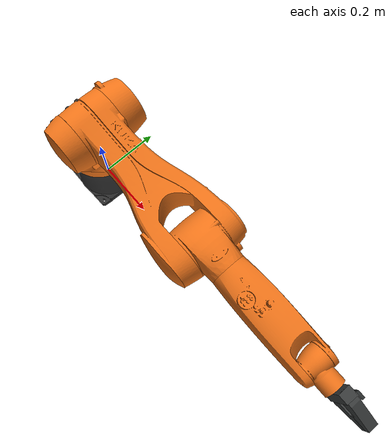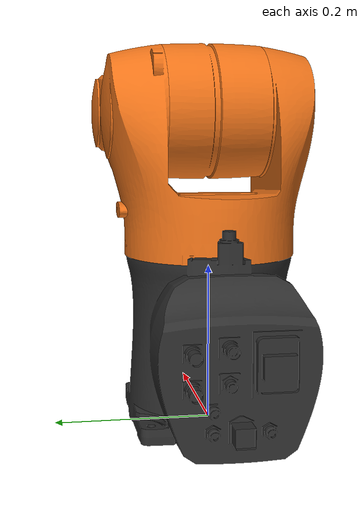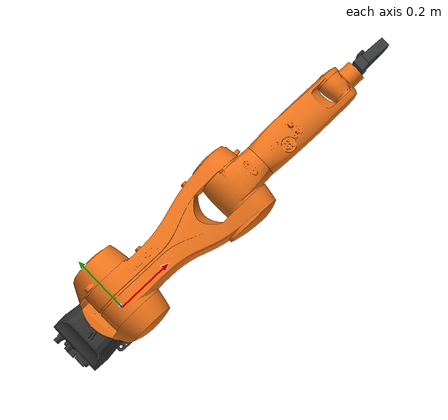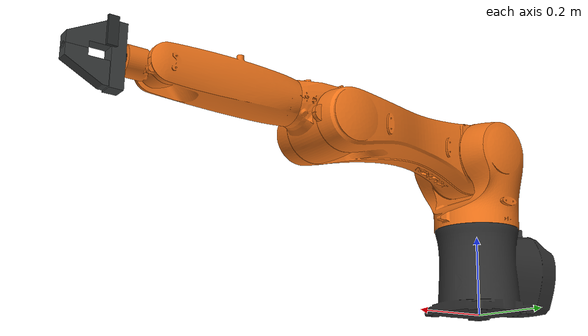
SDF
<?xml version="1.0"?>
<sdf version="1.9">
  <model name="kuka_kr6r900sixx">
    <self_collide>false</self_collide>
    <allow_auto_disable>false</allow_auto_disable>

    <link name="base_link">
      <inertial>
        <pose>-0.0568 0 0.1304 0 0 0</pose>
        <mass>25.0</mass>
        <inertia>
          <ixx>0.32</ixx>
          <iyy>0.32</iyy>
          <izz>0.28</izz>
          <ixy>0.0</ixy>
          <ixz>0.0</ixz>
          <iyz>0.0</iyz>
        </inertia>
      </inertial>
      <visual name="base_link_visual">
        <geometry>
          <mesh>
            <uri>model://kuka_kr6r900sixx/meshes/converted_visual/base_link.stl</uri>
          </mesh>
        </geometry>
        <material>
          <ambient>0.18 0.18 0.18 1</ambient>
          <diffuse>0.18 0.18 0.18 1</diffuse>
        </material>
      </visual>
    </link>

    <link name="link_1">
      <pose relative_to="joint_a1">0 0 0 0 0 0</pose>
      <inertial>
        <pose>0.0116 -0.0010 -0.0483 0 0 0</pose>
        <mass>8.0</mass>
        <inertia>
          <ixx>0.07</ixx>
          <iyy>0.07</iyy>
          <izz>0.05</izz>
          <ixy>0.0</ixy>
          <ixz>0.0</ixz>
          <iyz>0.0</iyz>
        </inertia>
      </inertial>
      <visual name="link_1_visual">
        <geometry>
          <mesh>
            <uri>model://kuka_kr6r900sixx/meshes/converted_visual/link_1.stl</uri>
          </mesh>
        </geometry>
        <material>
          <ambient>0.93 0.45 0.10 1</ambient>
          <diffuse>0.93 0.45 0.10 1</diffuse>
        </material>
      </visual>
    </link>

    <link name="link_2">
      <pose relative_to="joint_a2">0 0 0 0 0 0</pose>
      <inertial>
        <pose>0.2277 -0.0050 0.0001 0 0 0</pose>
        <mass>6.0</mass>
        <inertia>
          <ixx>0.04</ixx>
          <iyy>0.04</iyy>
          <izz>0.03</izz>
          <ixy>0.0</ixy>
          <ixz>0.0</ixz>
          <iyz>0.0</iyz>
        </inertia>
      </inertial>
      <visual name="link_2_visual">
        <geometry>
          <mesh>
            <uri>model://kuka_kr6r900sixx/meshes/converted_visual/link_2.stl</uri>
          </mesh>
        </geometry>
        <material>
          <ambient>0.93 0.45 0.10 1</ambient>
          <diffuse>0.93 0.45 0.10 1</diffuse>
        </material>
      </visual>
    </link>

    <link name="link_3">
      <pose relative_to="joint_a3">0 0 0 0 0 0</pose>
      <inertial>
        <pose>0.0203 0 0.0080 0 0 0</pose>
        <mass>4.0</mass>
        <inertia>
          <ixx>0.03</ixx>
          <iyy>0.03</iyy>
          <izz>0.02</izz>
          <ixy>0.0</ixy>
          <ixz>0.0</ixz>
          <iyz>0.0</iyz>
        </inertia>
      </inertial>
      <visual name="link_3_visual">
        <geometry>
          <mesh>
            <uri>model://kuka_kr6r900sixx/meshes/converted_visual/link_3.stl</uri>
          </mesh>
        </geometry>
        <material>
          <ambient>0.93 0.45 0.10 1</ambient>
          <diffuse>0.93 0.45 0.10 1</diffuse>
        </material>
      </visual>
    </link>

    <link name="link_4">
      <pose relative_to="joint_a4">0 0 0 0 0 0</pose>
      <inertial>
        <pose>0.2858 -0.0006 0.0092 0 0 0</pose>
        <mass>2.0</mass>
        <inertia>
          <ixx>0.015</ixx>
          <iyy>0.015</iyy>
          <izz>0.012</izz>
          <ixy>0.0</ixy>
          <ixz>0.0</ixz>
          <iyz>0.0</iyz>
        </inertia>
      </inertial>
      <visual name="link_4_visual">
        <geometry>
          <mesh>
            <uri>model://kuka_kr6r900sixx/meshes/converted_visual/link_4.stl</uri>
          </mesh>
        </geometry>
        <material>
          <ambient>0.93 0.45 0.10 1</ambient>
          <diffuse>0.93 0.45 0.10 1</diffuse>
        </material>
      </visual>
    </link>

    <link name="link_5">
      <pose relative_to="joint_a5">0 0 0 0 0 0</pose>
      <inertial>
        <pose>0.0198 -0.0003 0 0 0 0</pose>
        <mass>1.6</mass>
        <inertia>
          <ixx>0.01</ixx>
          <iyy>0.01</iyy>
          <izz>0.008</izz>
          <ixy>0.0</ixy>
          <ixz>0.0</ixz>
          <iyz>0.0</iyz>
        </inertia>
      </inertial>
      <visual name="link_5_visual">
        <geometry>
          <mesh>
            <uri>model://kuka_kr6r900sixx/meshes/converted_visual/link_5.stl</uri>
          </mesh>
        </geometry>
        <material>
          <ambient>0.93 0.45 0.10 1</ambient>
          <diffuse>0.93 0.45 0.10 1</diffuse>
        </material>
      </visual>
    </link>

    <link name="link_6">
      <pose relative_to="joint_a6">0 0 0 0 0 0</pose>
      <inertial>
        <pose>-0.0068 0 0 0 0 0</pose>
        <mass>1.0</mass>
        <inertia>
          <ixx>0.005</ixx>
          <iyy>0.005</iyy>
          <izz>0.004</izz>
          <ixy>0.0</ixy>
          <ixz>0.0</ixz>
          <iyz>0.0</iyz>
        </inertia>
      </inertial>
      <visual name="link_6_visual">
        <geometry>
          <mesh>
            <uri>model://kuka_kr6r900sixx/meshes/converted_visual/link_6.stl</uri>
          </mesh>
        </geometry>
        <material>
          <ambient>0.18 0.18 0.18 1</ambient>
          <diffuse>0.18 0.18 0.18 1</diffuse>
        </material>
      </visual>
    </link>

    <link name="flange">
      <pose relative_to="joint_a6_flange">0 0 0 0 0 0</pose>
    </link>
    <link name="base">
      <pose relative_to="base_link_base">0 0 0 0 0 0</pose>
    </link>
    <link name="tool0">
      <pose relative_to="flange_tool0">0 0 0 0 0 0</pose>
    </link>
    <link name="gripper">
      <pose relative_to="tool0_gripper">0 0 0 0 0 0</pose>
      <inertial>
        <pose>-0.00375 0.003 0.034 0 0 0</pose>
        <mass>1.0</mass>
        <inertia>
          <ixx>0.0010</ixx>
          <iyy>0.0014</iyy>
          <izz>0.0012</izz>
          <ixy>0.0</ixy>
          <ixz>0.0</ixz>
          <iyz>0.0</iyz>
        </inertia>
      </inertial>
      <visual name="schunk_kgg_140_60_body_visual">
        <pose>0 0 0.015 0 0 0</pose>
        <geometry>
          <box>
            <size>0.140 0.036 0.030</size>
          </box>
        </geometry>
        <material>
          <ambient>0.22 0.23 0.23 1</ambient>
          <diffuse>0.22 0.23 0.23 1</diffuse>
        </material>
      </visual>
      <visual name="schunk_kgg_140_60_side_module_visual">
        <pose>-0.046 0.020 0.0315 0 0 0</pose>
        <geometry>
          <box>
            <size>0.063 0.008 0.022</size>
          </box>
        </geometry>
        <material>
          <ambient>0.16 0.17 0.17 1</ambient>
          <diffuse>0.16 0.17 0.17 1</diffuse>
        </material>
      </visual>
    </link>
    <link name="gripper_left_jaw">
      <pose relative_to="gripper_left_jaw_joint">0 0 0 0 0 0</pose>
      <inertial>
        <pose>-0.02975 0 0.0394 0 0 0</pose>
        <mass>0.1</mass>
        <inertia>
          <ixx>0.000038</ixx>
          <iyy>0.000047</iyy>
          <izz>0.000030</izz>
          <ixy>0</ixy>
          <ixz>0</ixz>
          <iyz>0</iyz>
        </inertia>
      </inertial>
      <visual name="gripper_left_jaw_visual">
        <pose>-0.047 0.015 0.021 -1.57079632679 0 3.14159265359</pose>
        <geometry>
          <mesh>
            <uri>model://kuka_kr6r900sixx/meshes/gripper/jaw_kuka.stl</uri>
            <scale>1 1 1</scale>
          </mesh>
        </geometry>
        <material>
          <ambient>0.22 0.23 0.23 1</ambient>
          <diffuse>0.22 0.23 0.23 1</diffuse>
        </material>
      </visual>
    </link>
    <link name="gripper_right_jaw">
      <pose relative_to="gripper_right_jaw_joint">0 0 0 0 0 0</pose>
      <inertial>
        <pose>0.02975 0 0.0394 0 0 0</pose>
        <mass>0.1</mass>
        <inertia>
          <ixx>0.000038</ixx>
          <iyy>0.000047</iyy>
          <izz>0.000030</izz>
          <ixy>0</ixy>
          <ixz>0</ixz>
          <iyz>0</iyz>
        </inertia>
      </inertial>
      <visual name="gripper_right_jaw_visual">
        <pose>0.047 -0.015 0.021 -1.57079632679 0 0</pose>
        <geometry>
          <mesh>
            <uri>model://kuka_kr6r900sixx/meshes/gripper/jaw_kuka.stl</uri>
            <scale>1 1 1</scale>
          </mesh>
        </geometry>
        <material>
          <ambient>0.22 0.23 0.23 1</ambient>
          <diffuse>0.22 0.23 0.23 1</diffuse>
        </material>
      </visual>
    </link>
    <link name="gripper_tcp">
      <pose relative_to="gripper_tcp_joint">0 0 0 0 0 0</pose>
    </link>

    <joint name="world_joint" type="fixed">
      <parent>world</parent>
      <child>base_link</child>
    </joint>

    <joint name="joint_a1" type="revolute">
      <parent>base_link</parent>
      <child>link_1</child>
      <pose relative_to="base_link">0 0 0.400 0 0 0</pose>
      <axis>
        <xyz>0 0 -1</xyz>
        <limit>
          <lower>-2.96706</lower>
          <upper>2.96706</upper>
          <effort>400</effort>
          <velocity>6.28319</velocity>
        </limit>
        <dynamics>
          <damping>14.0</damping>
          <friction>2.5</friction>
        </dynamics>
      </axis>
    </joint>

    <joint name="joint_a2" type="revolute">
      <parent>link_1</parent>
      <child>link_2</child>
      <pose relative_to="link_1">0.025 0 0 0 0 0</pose>
      <axis>
        <xyz>0 1 0</xyz>
        <limit>
          <lower>-3.31613</lower>
          <upper>0.7854</upper>
          <effort>400</effort>
          <velocity>5.23599</velocity>
        </limit>
        <dynamics>
          <damping>18.0</damping>
          <friction>3.0</friction>
        </dynamics>
      </axis>
    </joint>

    <joint name="joint_a3" type="revolute">
      <parent>link_2</parent>
      <child>link_3</child>
      <pose relative_to="link_2">0.455 0 0 0 0 0</pose>
      <axis>
        <xyz>0 1 0</xyz>
        <limit>
          <lower>-2.0944</lower>
          <upper>2.72271</upper>
          <effort>300</effort>
          <velocity>6.28319</velocity>
        </limit>
        <dynamics>
          <damping>13.0</damping>
          <friction>2.4</friction>
        </dynamics>
      </axis>
    </joint>

    <joint name="joint_a4" type="revolute">
      <parent>link_3</parent>
      <child>link_4</child>
      <pose relative_to="link_3">0 0 0.035 0 0 0</pose>
      <axis>
        <xyz>-1 0 0</xyz>
        <limit>
          <lower>-3.22886</lower>
          <upper>3.22886</upper>
          <effort>300</effort>
          <velocity>6.6497</velocity>
        </limit>
        <dynamics>
          <damping>7.0</damping>
          <friction>1.4</friction>
        </dynamics>
      </axis>
    </joint>

    <joint name="joint_a5" type="revolute">
      <parent>link_4</parent>
      <child>link_5</child>
      <pose relative_to="link_4">0.420 0 0 0 0 0</pose>
      <axis>
        <xyz>0 1 0</xyz>
        <limit>
          <lower>-2.0944</lower>
          <upper>2.0944</upper>
          <effort>250</effort>
          <velocity>6.77188</velocity>
        </limit>
        <dynamics>
          <damping>6.0</damping>
          <friction>1.2</friction>
        </dynamics>
      </axis>
    </joint>

    <joint name="joint_a6" type="revolute">
      <parent>link_5</parent>
      <child>link_6</child>
      <pose relative_to="link_5">0.080 0 0 0 0 0</pose>
      <axis>
        <xyz>-1 0 0</xyz>
        <limit>
          <lower>-6.10865</lower>
          <upper>6.10865</upper>
          <effort>200</effort>
          <velocity>10.73377</velocity>
        </limit>
        <dynamics>
          <damping>4.5</damping>
          <friction>0.9</friction>
        </dynamics>
      </axis>
    </joint>

    <joint name="joint_a6_flange" type="fixed">
      <parent>link_6</parent>
      <child>flange</child>
      <pose relative_to="link_6">0 0 0 0 0 0</pose>
    </joint>

    <joint name="base_link_base" type="fixed">
      <parent>base_link</parent>
      <child>base</child>
      <pose relative_to="base_link">0 0 0 0 0 0</pose>
    </joint>

    <joint name="flange_tool0" type="fixed">
      <parent>flange</parent>
      <child>tool0</child>
      <pose relative_to="flange">0 0 0 0 1.57079632679 0</pose>
    </joint>

    <joint name="tool0_gripper" type="fixed">
      <parent>tool0</parent>
      <child>gripper</child>
      <pose relative_to="tool0">0 0 0 0 0 0</pose>
    </joint>

    <joint name="gripper_left_jaw_joint" type="prismatic">
      <parent>gripper</parent>
      <child>gripper_left_jaw</child>
      <pose relative_to="gripper">0 0 0 0 0 0</pose>
      <axis>
        <xyz>-1 0 0</xyz>
        <limit>
          <lower>0</lower>
          <upper>0.030</upper>
          <effort>150</effort>
          <velocity>0.18</velocity>
        </limit>
        <dynamics>
          <damping>0.5</damping>
          <friction>0.0</friction>
        </dynamics>
      </axis>
    </joint>

    <joint name="gripper_right_jaw_joint" type="prismatic">
      <parent>gripper</parent>
      <child>gripper_right_jaw</child>
      <pose relative_to="gripper">0 0 0 0 0 0</pose>
      <axis>
        <xyz>1 0 0</xyz>
        <limit>
          <lower>0</lower>
          <upper>0.030</upper>
          <effort>150</effort>
          <velocity>0.18</velocity>
        </limit>
        <dynamics>
          <damping>0.5</damping>
          <friction>0.0</friction>
        </dynamics>
      </axis>
    </joint>

    <joint name="gripper_tcp_joint" type="fixed">
      <parent>gripper</parent>
      <child>gripper_tcp</child>
      <pose relative_to="gripper">0 0 0.068 0 0 0</pose>
    </joint>

    <plugin
      filename="gz-sim-joint-state-publisher-system"
      name="gz::sim::systems::JointStatePublisher">
      <joint_name>joint_a1</joint_name>
      <joint_name>joint_a2</joint_name>
      <joint_name>joint_a3</joint_name>
      <joint_name>joint_a4</joint_name>
      <joint_name>joint_a5</joint_name>
      <joint_name>joint_a6</joint_name>
      <joint_name>gripper_left_jaw_joint</joint_name>
      <joint_name>gripper_right_jaw_joint</joint_name>
    </plugin>

    <plugin
      filename="mfja-symmetric-gripper-controller-system"
      name="mfja::sim::systems::SymmetricGripperController">
      <left_joint_name>gripper_left_jaw_joint</left_joint_name>
      <right_joint_name>gripper_right_jaw_joint</right_joint_name>
      <sub_topic>gripper/position_command</sub_topic>
      <min_position>0.0</min_position>
      <max_position>0.030</max_position>
      <max_velocity>0.18</max_velocity>
      <initial_position>0.0</initial_position>
    </plugin>

    <plugin
      filename="mfja-smooth-joint-trajectory-controller-system"
      name="mfja::sim::systems::SmoothJointTrajectoryController">
      <joint_name>joint_a1</joint_name>
      <initial_position>0.00000000000</initial_position>

      <joint_name>joint_a2</joint_name>
      <initial_position>-1.57079632679</initial_position>

      <joint_name>joint_a3</joint_name>
      <initial_position>1.91986217719</initial_position>

      <joint_name>joint_a4</joint_name>
      <initial_position>0.00000000000</initial_position>

      <joint_name>joint_a5</joint_name>
      <initial_position>-0.03490658504</initial_position>

      <joint_name>joint_a6</joint_name>
      <initial_position>0.00000000000</initial_position>

      <default_duration_sec>4.0</default_duration_sec>
      <max_velocity_scale>0.5</max_velocity_scale>
    </plugin>
  </model>
</sdf>
